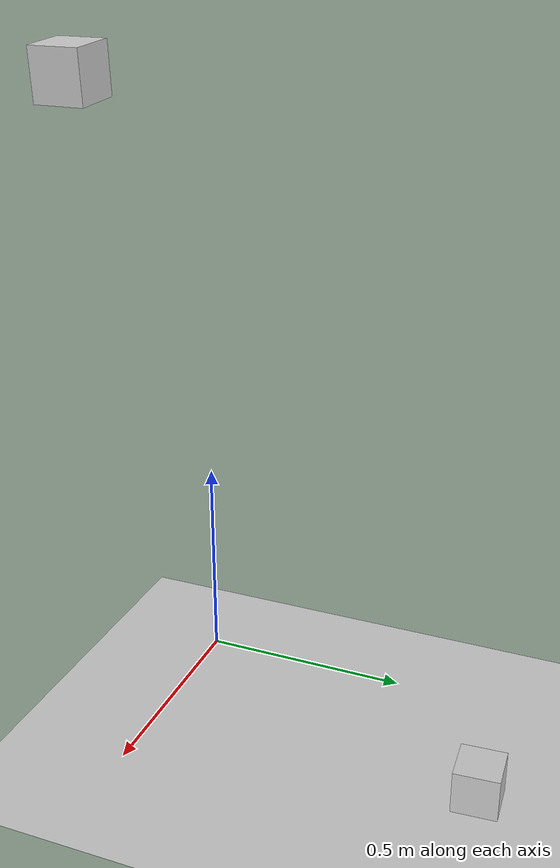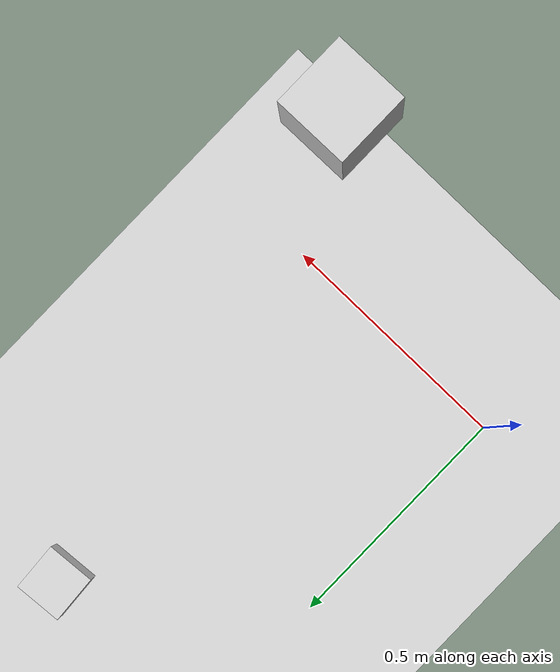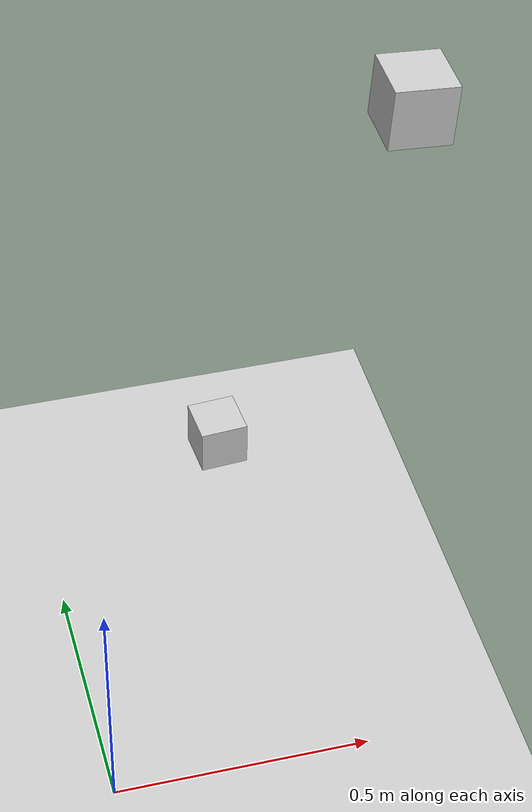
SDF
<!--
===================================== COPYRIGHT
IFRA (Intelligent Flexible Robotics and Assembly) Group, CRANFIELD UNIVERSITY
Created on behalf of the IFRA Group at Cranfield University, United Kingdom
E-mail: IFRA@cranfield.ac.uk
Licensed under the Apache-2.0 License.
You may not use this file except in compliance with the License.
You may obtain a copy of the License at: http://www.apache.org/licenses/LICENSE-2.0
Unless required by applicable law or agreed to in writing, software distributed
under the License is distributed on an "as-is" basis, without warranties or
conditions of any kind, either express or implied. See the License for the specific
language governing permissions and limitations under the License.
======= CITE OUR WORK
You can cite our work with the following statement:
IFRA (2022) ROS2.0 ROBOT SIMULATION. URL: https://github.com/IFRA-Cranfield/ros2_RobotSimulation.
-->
<?xml version="1.0" ?>

<sdf version="1.4">

  <world name="default">
    <include>
      <uri>model://ground_plane</uri>
    </include>

    <include>
      <uri>model://sun</uri>
    </include>

    <scene>
      <shadows>0</shadows>
    </scene>

    <!-- GAZEBO PLUGINS: -->
    <!-- The following plugins must be activated for the ros2_grasping to effectively work: -->

    <plugin name="gazebo_ros_state" filename="libgazebo_ros_state.so">
      <ros>
        <namespace>/ros2_grasp</namespace>
        <argument>model_states:=model_states</argument>
        <argument>link_states:=link_states</argument>
      </ros>
      <update_rate>1.0</update_rate>
    </plugin>

    <plugin name="gazebo_ros_properties" filename="libgazebo_ros_properties.so">
      <ros>
        <namespace>/ros2_grasp</namespace>
      </ros>
    </plugin>

    <!-- Top-Down Camera for UR5 Observation -->
    <model name="topdown_camera">
        <static>true</static>
        <!-- Position camera above the robot workspace -->
        <pose>0.5 0 1.5 -3 1.5 -3</pose>  <!-- x y z roll pitch yaw - better height -->
        <link name="camera_link">
            <!-- Removed collision geometry to prevent interference with robot -->
            <visual name="visual">
            <geometry>
                <box>
                <size>0.1 0.1 0.1</size>
                </box>
            </geometry>
            <material>
                <ambient>0.8 0.8 0.8 1</ambient>
                <diffuse>0.8 0.8 0.8 1</diffuse>
                <specular>0.2 0.2 0.2 1</specular>
                <emissive>0.1 0.1 0.1 1</emissive>
                <shader type='pixel'/>
            </material>
            </visual>
            <!-- Removed inertial element to prevent joint command topics -->
            <sensor type="camera" name="topdown_camera">
                <update_rate>30.0</update_rate>
                <camera name="head">
                    <horizontal_fov>1.5708</horizontal_fov>  <!-- 90 degrees -->
                    <image>
                    <width>1280</width>
                    <height>720</height>
                    <format>R8G8B8</format>
                    </image>
                    <clip>
                    <near>0.1</near>
                    <far>100.0</far>
                    </clip>
                    <noise>
                    <type>gaussian</type>
                    <mean>0.0</mean>
                    <stddev>0.007</stddev>
                    </noise>
                </camera>
                <plugin name="topdown_camera_controller" filename="libgazebo_ros_camera.so">
                    <alwaysOn>true</alwaysOn>
                    <updateRate>30.0</updateRate>
                    <cameraName>topdown_camera</cameraName>
                    <imageTopicName>image_raw</imageTopicName>
                    <cameraInfoTopicName>camera_info</cameraInfoTopicName>
                    <frameName>topdown_camera_link</frameName>
                </plugin>
            </sensor>
        </link>

        <!-- Disable self-collision for camera -->
        <gazebo reference="camera_link">
            <selfCollide>false</selfCollide>
            <static>true</static>
        </gazebo>
    </model>

    <!-- Side-View Camera for UR5 Observation -->
    <model name="sideview_camera">
        <static>true</static>
        <!-- Position camera to the side of the robot workspace -->
        <pose>0.4 0.8 0.1 0 0 -1.5</pose> <!-- x y z roll pitch yaw - side view -->
        <link name="camera_link">
            <!-- Removed collision geometry to prevent interference with robot -->
            <visual name="visual">
            <geometry>
                <box>
                <size>0.1 0.1 0.1</size>
                </box>
            </geometry>
            <material>
                <ambient>0.8 0.8 0.8 1</ambient>
                <diffuse>0.8 0.8 0.8 1</diffuse>
                <specular>0.2 0.2 0.2 1</specular>
                <emissive>0.1 0.1 0.1 1</emissive>
                <shader type='pixel'/>
            </material>
            </visual>
            <!-- Removed inertial element to prevent joint command topics -->
            <sensor type="camera" name="sideview_camera">
                <update_rate>30.0</update_rate>
                <camera name="head">
                    <horizontal_fov>1.5708</horizontal_fov>  <!-- 90 degrees -->
                    <image>
                    <width>1280</width>
                    <height>720</height>
                    <format>R8G8B8</format>
                    </image>
                    <clip>
                    <near>0.1</near>
                    <far>100.0</far>
                    </clip>
                    <noise>
                    <type>gaussian</type>
                    <mean>0.0</mean>
                    <stddev>0.007</stddev>
                    </noise>
                </camera>
                <plugin name="sideview_camera_controller" filename="libgazebo_ros_camera.so">
                    <alwaysOn>true</alwaysOn>
                    <updateRate>30.0</updateRate>
                    <cameraName>sideview_camera</cameraName>
                    <imageTopicName>image_raw</imageTopicName>
                    <cameraInfoTopicName>camera_info</cameraInfoTopicName>
                    <frameName>sideview_camera_link</frameName>
                </plugin>
            </sensor>
        </link>

        <!-- Disable self-collision for camera -->
        <gazebo reference="camera_link">
            <selfCollide>false</selfCollide>
            <static>false</static>
        </gazebo>
    </model>

  </world>
</sdf>
